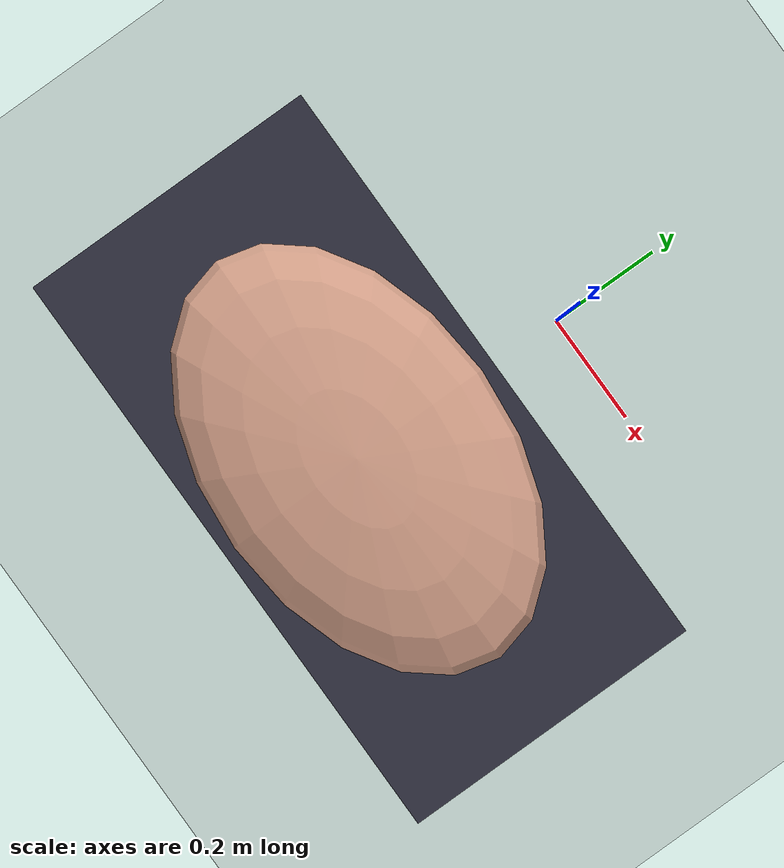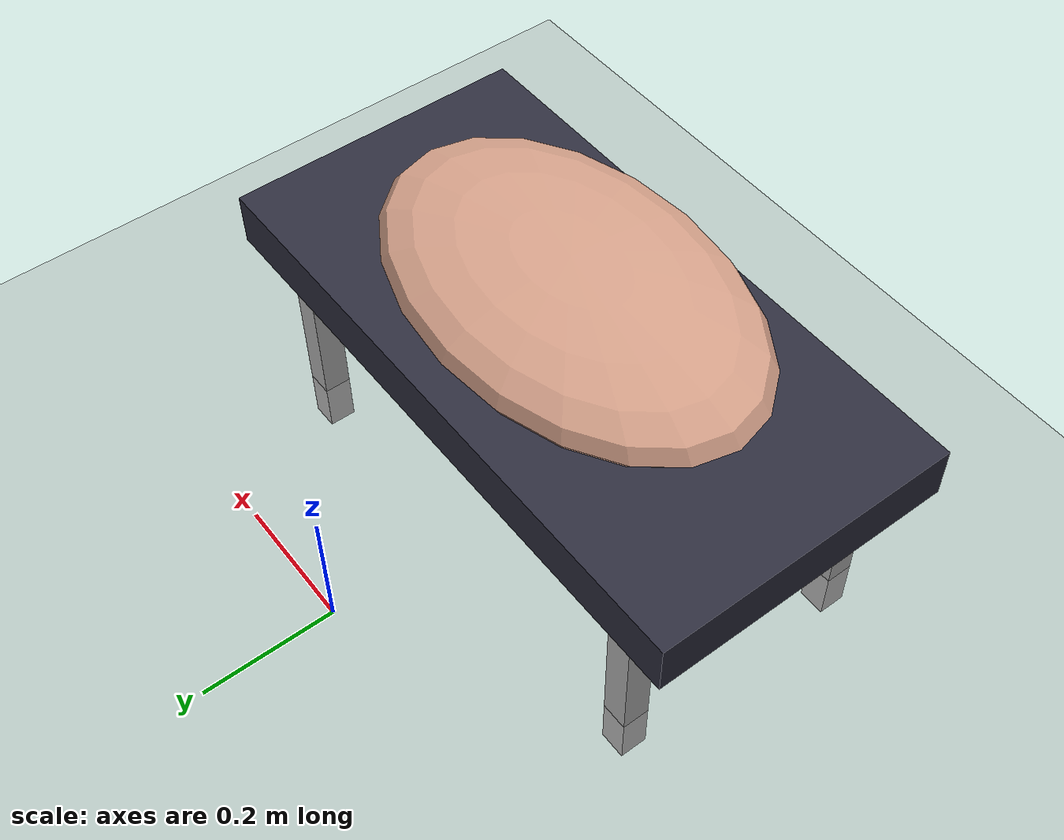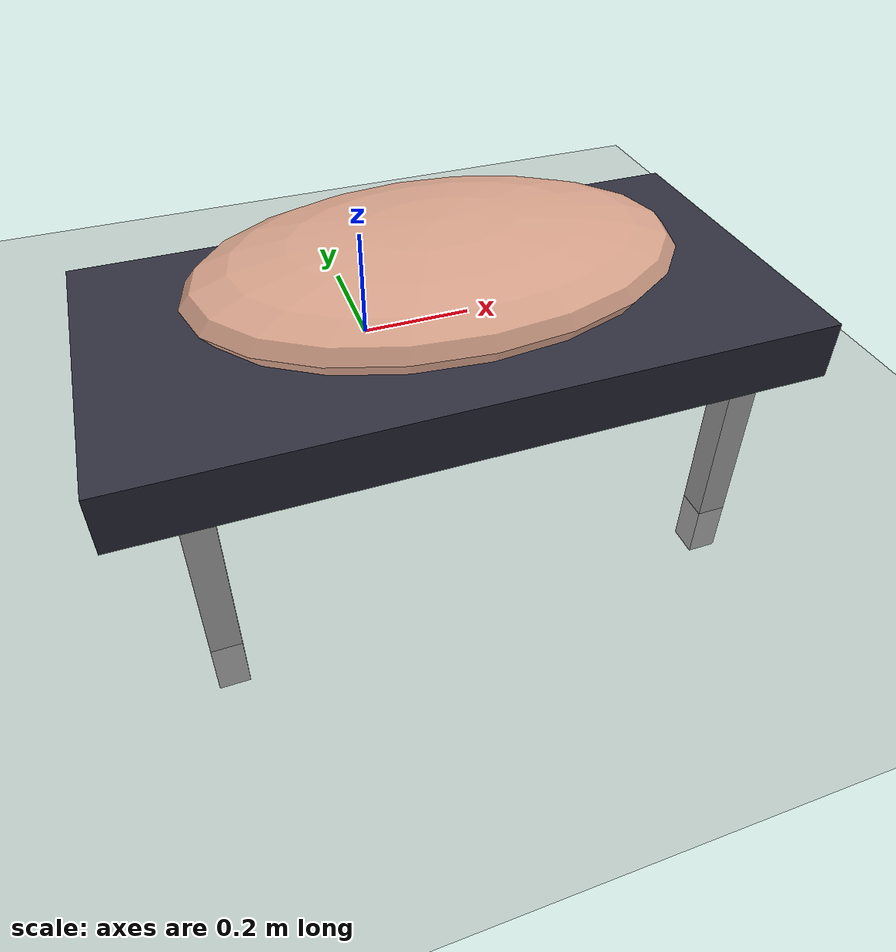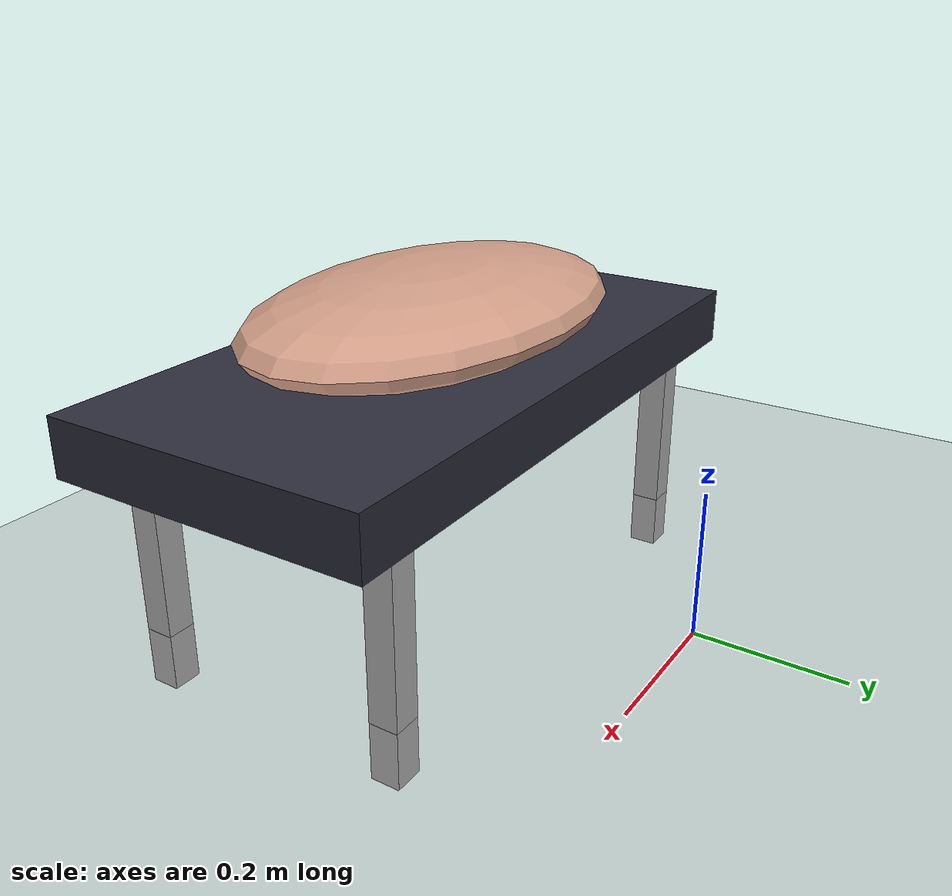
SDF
<?xml version="1.0" ?>
<sdf version="1.10">
  <world name="smm_world">

    <plugin
      filename="gz-sim-physics-system"
      name="gz::sim::systems::Physics">
    </plugin>

    <plugin
      filename="gz-sim-user-commands-system"
      name="gz::sim::systems::UserCommands">
    </plugin>

    <plugin
      filename="gz-sim-scene-broadcaster-system"
      name="gz::sim::systems::SceneBroadcaster">
    </plugin>

    <plugin
      filename="gz-sim-sensors-system"
      name="gz::sim::systems::Sensors">
    </plugin>

    <!-- Required for /world/smm_world/wrench and /wrench/persistent -->
    <plugin
      filename="gz-sim-apply-link-wrench-system"
      name="gz::sim::systems::ApplyLinkWrench">
    </plugin>

    <gravity>0 0 -9.81</gravity>

    <light type="directional" name="sun">
      <cast_shadows>true</cast_shadows>
      <pose>0 0 10 0 0 0</pose>
      <diffuse>0.8 0.8 0.8 1</diffuse>
      <specular>0.2 0.2 0.2 1</specular>
      <direction>-0.5 0.1 -0.9</direction>
    </light>

    <model name="ground_plane">
      <static>true</static>
      <link name="link">
        <collision name="collision">
          <geometry>
            <plane>
              <normal>0 0 1</normal>
              <size>10 10</size>
            </plane>
          </geometry>
        </collision>
        <visual name="visual">
          <geometry>
            <plane>
              <normal>0 0 1</normal>
              <size>10 10</size>
            </plane>
          </geometry>
          <material>
            <ambient>0.45 0.45 0.45 1</ambient>
            <diffuse>0.55 0.55 0.55 1</diffuse>
          </material>
        </visual>
      </link>
    </model>

    <!-- Simple massage table -->
    <model name="massage_table">
        <static>true</static>
        <!-- shifted -1 m in world Y and rotated +90 deg around world Z -->
        <pose>00 -0.40 0.28 0 0 0</pose>

        <link name="top">
            <collision name="collision">
            <geometry>
                <box>
                <size>0.90 0.45 0.08</size>
                </box>
            </geometry>
            </collision>
            <visual name="visual">
            <geometry>
                <box>
                <size>0.90 0.45 0.08</size>
                </box>
            </geometry>
            <material>
                <ambient>0.12 0.12 0.16 1</ambient>
                <diffuse>0.18 0.18 0.24 1</diffuse>
            </material>
            </visual>
        </link>

        <link name="leg_1">
            <pose>0.35 0.18 -0.18 0 0 0</pose>
            <collision name="collision">
            <geometry>
                <box>
                <size>0.04 0.04 0.36</size>
                </box>
            </geometry>
            </collision>
            <visual name="visual">
            <geometry>
                <box>
                <size>0.04 0.04 0.36</size>
                </box>
            </geometry>
            </visual>
        </link>

        <link name="leg_2">
            <pose>-0.35 0.18 -0.18 0 0 0</pose>
            <collision name="collision">
            <geometry>
                <box>
                <size>0.04 0.04 0.36</size>
                </box>
            </geometry>
            </collision>
            <visual name="visual">
            <geometry>
                <box>
                <size>0.04 0.04 0.36</size>
                </box>
            </geometry>
            </visual>
        </link>

        <link name="leg_3">
            <pose>0.35 -0.18 -0.18 0 0 0</pose>
            <collision name="collision">
            <geometry>
                <box>
                <size>0.04 0.04 0.36</size>
                </box>
            </geometry>
            </collision>
            <visual name="visual">
            <geometry>
                <box>
                <size>0.04 0.04 0.36</size>
                </box>
            </geometry>
            </visual>
        </link>

        <link name="leg_4">
            <pose>-0.35 -0.18 -0.18 0 0 0</pose>
            <collision name="collision">
            <geometry>
                <box>
                <size>0.04 0.04 0.36</size>
                </box>
            </geometry>
            </collision>
            <visual name="visual">
            <geometry>
                <box>
                <size>0.04 0.04 0.36</size>
                </box>
            </geometry>
            </visual>
        </link>
    </model>

    <!-- Human-back-like static target for massage interaction tests -->
    <model name="human_back_target">
        <static>true</static>
        <!-- kept on top of the massage table, same yaw rotation -->
        <pose>0.00 -0.40 0.37 0 0 0</pose>

        <link name="back_surface">
            <collision name="collision">
            <geometry>
                <box>
                <size>0.55 0.32 0.08</size>
                </box>
            </geometry>
            </collision>

            <visual name="visual">
            <geometry>
                <ellipsoid>
                <radii>0.32 0.20 0.06</radii>
                </ellipsoid>
            </geometry>
            <material>
                <ambient>0.75 0.55 0.46 1</ambient>
                <diffuse>0.82 0.62 0.53 1</diffuse>
            </material>
            </visual>
        </link>
    </model>

  </world>
</sdf>
